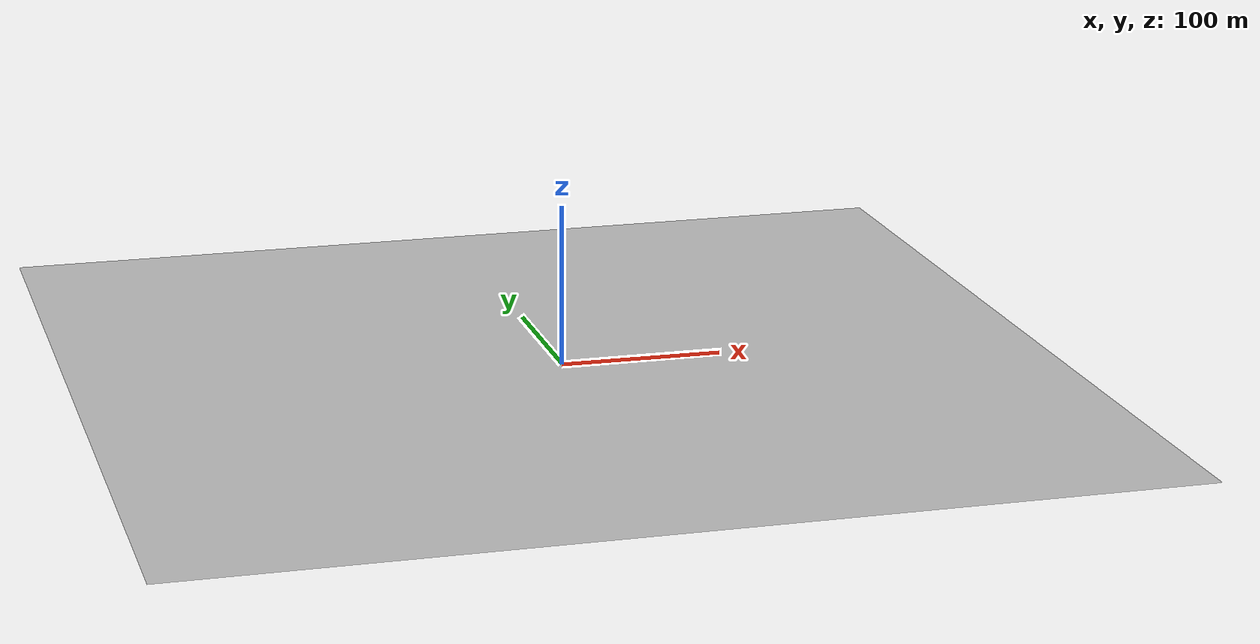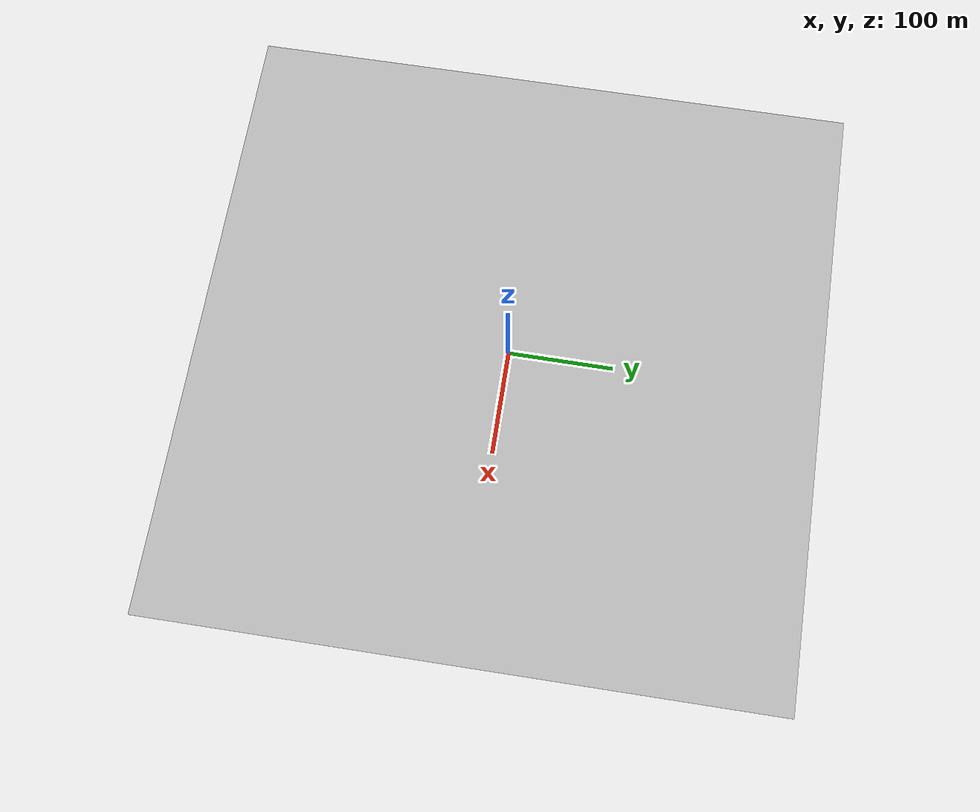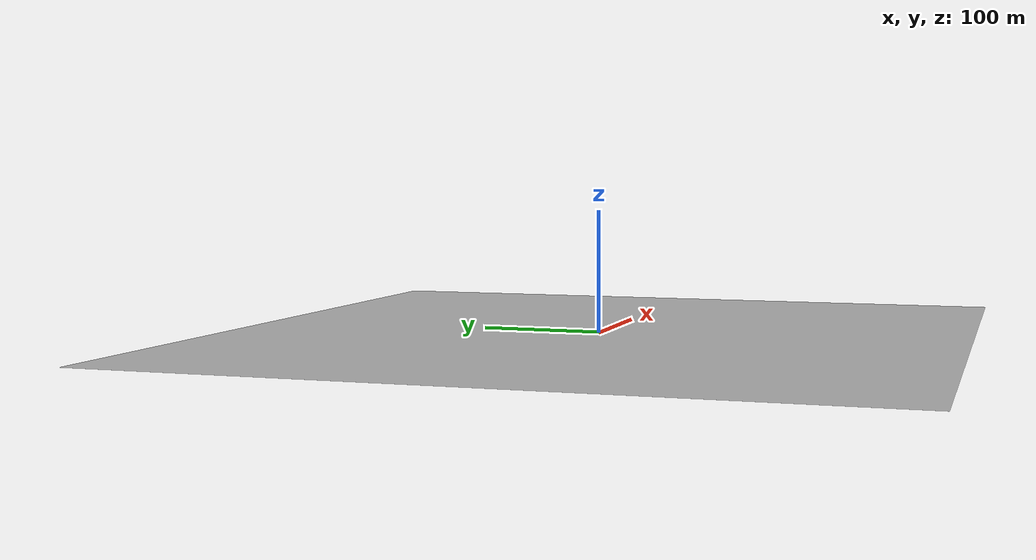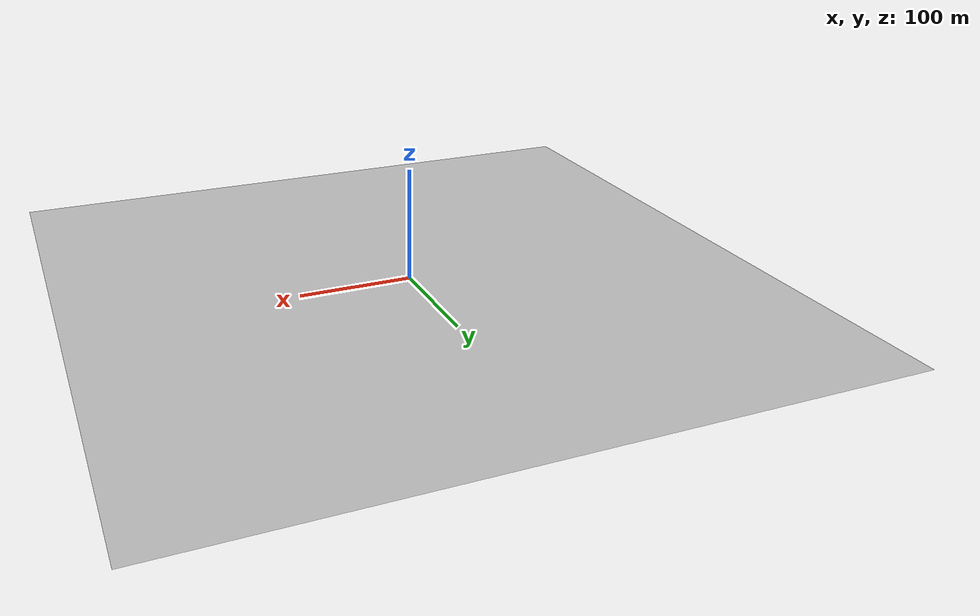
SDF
<?xml version="1.0" ?>
<sdf version="1.5">
  <model name="plain_ground">
    <pose>0 0 0 0 0 0</pose>
    <static>true</static>
    <link name="body">
     <collision name='collision'>
        <geometry>
            <mesh><uri>model://urdf/models/plain_ground/media/plain_ground.dae</uri></mesh>
          </geometry>
        </collision>
      <visual name="visual">
         <cast_shadows>false</cast_shadows>
        <geometry>
          <mesh><uri>model://urdf/models/plain_ground/media/plain_ground.dae</uri></mesh>
        </geometry>
	    <material>
          <script>
            <uri>model://urdf/models/plain_ground/media/scripts</uri>
            <uri>model://urdf/models/plain_ground/media/Textures</uri>
            <name>RepeatedGrass/Diffuse</name>
          </script>
        </material>
      </visual>
    </link>
  </model>
</sdf>
